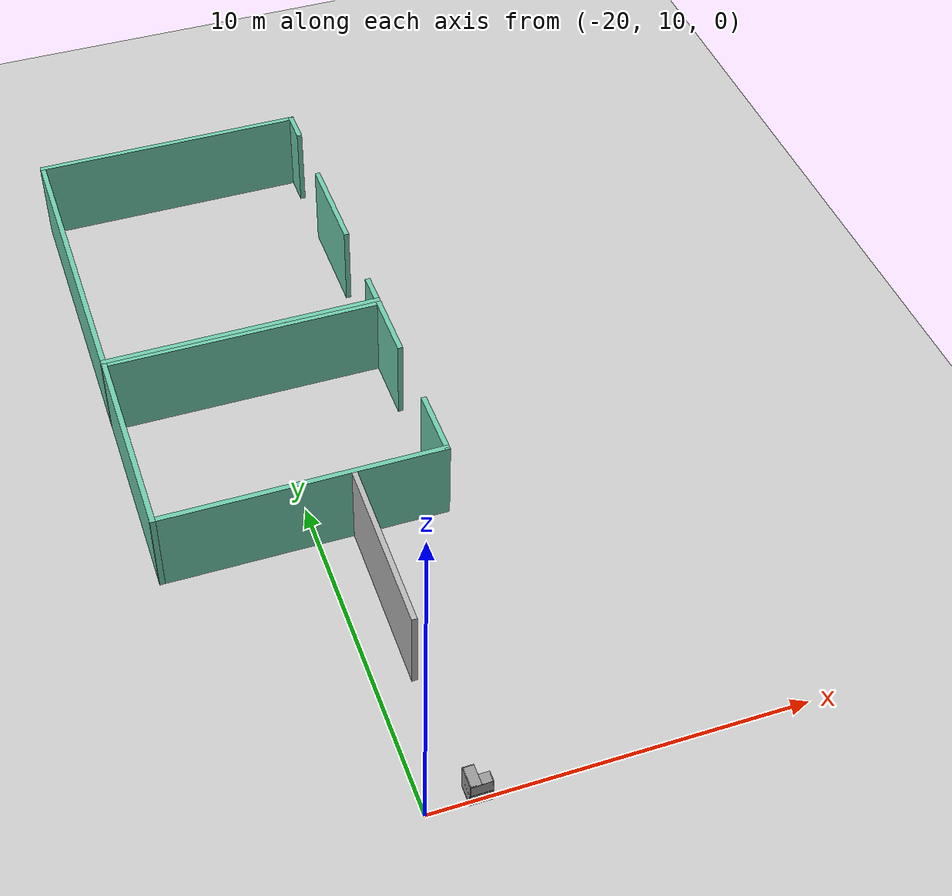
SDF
<sdf version="1.7">
 <world name="hospital_world">
  <model name="ground_plane">
   <static>1</static>
   <link name="link">
    <collision name="collision">
     <geometry><plane><normal>0 0 1</normal><size>100 100</size></plane></geometry>
     <surface>
      <contact><collide_bitmask>65535</collide_bitmask></contact>
      <friction><ode><mu>100</mu><mu2>50</mu2></ode></friction>
     </surface>
    </collision>
    <visual name="visual">
     <cast_shadows>0</cast_shadows>
     <geometry><plane><normal>0 0 1</normal><size>100 100</size></plane></geometry>
     <material>
      <script><uri>file://media/materials/scripts/gazebo.material</uri><name>Gazebo/Grey</name></script>
     </material>
    </visual>
   </link>
  </model>
  <model name="model.sdf_2_clone_clone_0">
   <pose>-20.3146 21.7313 0 0 -0 3.13762</pose>
   <link name="Wall_0">
    <collision name="Wall_0_Collision">
     <geometry><box><size>8 0.15 2.5</size></box></geometry>
     <pose>0 0 1.25 0 -0 0</pose>
    </collision>
    <visual name="Wall_0_Visual">
     <pose>0 0 1.25 0 -0 0</pose>
     <geometry><box><size>8 0.15 2.5</size></box></geometry>
     <material>
      <script><uri>file://media/materials/scripts/gazebo.material</uri><name>Gazebo/Grey</name></script>
      <ambient>0.435294 0.796078 0.67451 1</ambient>
     </material>
     <meta><layer>0</layer></meta>
    </visual>
    <pose>-0 -2.925 0 0 -0 0</pose>
   </link>
   <link name="Wall_2">
    <collision name="Wall_2_Collision">
     <geometry><box><size>6 0.15 2.5</size></box></geometry>
     <pose>0 0 1.25 0 -0 0</pose>
    </collision>
    <visual name="Wall_2_Visual">
     <pose>0 0 1.25 0 -0 0</pose>
     <geometry><box><size>6 0.15 2.5</size></box></geometry>
     <material>
      <script><uri>file://media/materials/scripts/gazebo.material</uri><name>Gazebo/Grey</name></script>
      <ambient>0.435294 0.796078 0.67451 1</ambient>
     </material>
     <meta><layer>0</layer></meta>
    </visual>
    <pose>3.925 0 0 0 -0 1.5708</pose>
   </link>
   <link name="Wall_5">
    <collision name="Wall_5_Collision">
     <geometry><box><size>8 0.15 2.5</size></box></geometry>
     <pose>0 0 1.25 0 -0 0</pose>
    </collision>
    <visual name="Wall_5_Visual">
     <pose>0 0 1.25 0 -0 0</pose>
     <geometry><box><size>8 0.15 2.5</size></box></geometry>
     <material>
      <script><uri>file://media/materials/scripts/gazebo.material</uri><name>Gazebo/Grey</name></script>
      <ambient>0.435294 0.796078 0.67451 1</ambient>
     </material>
     <meta><layer>0</layer></meta>
    </visual>
    <pose>-0 2.925 0 0 -0 3.14159</pose>
   </link>
   <link name="Wall_6">
    <collision name="Wall_6_Collision">
     <geometry><box><size>2 0.15 2.5</size></box></geometry>
     <pose>0 0 1.25 0 -0 0</pose>
    </collision>
    <visual name="Wall_6_Visual">
     <pose>0 0 1.25 0 -0 0</pose>
     <geometry><box><size>2 0.15 2.5</size></box></geometry>
     <material>
      <script><uri>file://media/materials/scripts/gazebo.material</uri><name>Gazebo/Grey</name></script>
      <ambient>0.435294 0.796078 0.67451 1</ambient>
     </material>
     <meta><layer>0</layer></meta>
    </visual>
    <pose>-3.925 2 0 0 -0 -1.5708</pose>
   </link>
   <link name="Wall_8">
    <collision name="Wall_8_Collision">
     <geometry><box><size>2 0.15 2.5</size></box></geometry>
     <pose>0 0 1.25 0 -0 0</pose>
    </collision>
    <visual name="Wall_8_Visual">
     <pose>0 0 1.25 0 -0 0</pose>
     <geometry><box><size>2 0.15 2.5</size></box></geometry>
     <material>
      <script><uri>file://media/materials/scripts/gazebo.material</uri><name>Gazebo/Grey</name></script>
      <ambient>0.435294 0.796078 0.67451 1</ambient>
     </material>
     <meta><layer>0</layer></meta>
    </visual>
    <pose>-3.925 -2 0 0 -0 1.5708</pose>
   </link>
   <static>1</static>
  </model>
  <model name="model.sdf_3_clone">
   <pose>-20.2978 29.2115 0 0 -0 3.1401</pose>
   <link name="Wall_0">
    <collision name="Wall_0_Collision">
     <geometry><box><size>8 0.15 2.5</size></box></geometry>
     <pose>0 0 1.25 0 -0 0</pose>
    </collision>
    <visual name="Wall_0_Visual">
     <pose>0 0 1.25 0 -0 0</pose>
     <geometry><box><size>8 0.15 2.5</size></box></geometry>
     <material>
      <script><uri>file://media/materials/scripts/gazebo.material</uri><name>Gazebo/Grey</name></script>
      <ambient>0.435294 0.796078 0.67451 1</ambient>
     </material>
     <meta><layer>0</layer></meta>
    </visual>
    <pose>0.00165 -4.425 0 0 -0 0</pose>
   </link>
   <link name="Wall_1">
    <collision name="Wall_1_Collision">
     <geometry><box><size>9 0.15 2.5</size></box></geometry>
     <pose>0 0 1.25 0 -0 0</pose>
    </collision>
    <visual name="Wall_1_Visual">
     <pose>0 0 1.25 0 -0 0</pose>
     <geometry><box><size>9 0.15 2.5</size></box></geometry>
     <material>
      <script><uri>file://media/materials/scripts/gazebo.material</uri><name>Gazebo/Grey</name></script>
      <ambient>0.435294 0.796078 0.67451 1</ambient>
     </material>
     <meta><layer>0</layer></meta>
    </visual>
    <pose>3.92665 0 0 0 -0 1.5708</pose>
   </link>
   <link name="Wall_3">
    <collision name="Wall_3_Collision">
     <geometry><box><size>8 0.15 2.5</size></box></geometry>
     <pose>0 0 1.25 0 -0 0</pose>
    </collision>
    <visual name="Wall_3_Visual">
     <pose>0 0 1.25 0 -0 0</pose>
     <geometry><box><size>8 0.15 2.5</size></box></geometry>
     <material>
      <script><uri>file://media/materials/scripts/gazebo.material</uri><name>Gazebo/Grey</name></script>
      <ambient>0.435294 0.796078 0.67451 1</ambient>
     </material>
     <meta><layer>0</layer></meta>
    </visual>
    <pose>0.00165 4.425 0 0 -0 3.14159</pose>
   </link>
   <link name="Wall_4">
    <collision name="Wall_4_Collision">
     <geometry><box><size>1 0.15 2.5</size></box></geometry>
     <pose>0 0 1.25 0 -0 0</pose>
    </collision>
    <visual name="Wall_4_Visual">
     <pose>0 0 1.25 0 -0 0</pose>
     <geometry><box><size>1 0.15 2.5</size></box></geometry>
     <material>
      <script><uri>file://media/materials/scripts/gazebo.material</uri><name>Gazebo/Grey</name></script>
      <ambient>0.435294 0.796078 0.67451 1</ambient>
     </material>
     <meta><layer>0</layer></meta>
    </visual>
    <pose>-3.92335 4 0 0 -0 -1.5708</pose>
   </link>
   <link name="Wall_6">
    <collision name="Wall_6_Collision">
     <geometry><box><size>1 0.15 2.5</size></box></geometry>
     <pose>0 0 1.25 0 -0 0</pose>
    </collision>
    <visual name="Wall_6_Visual">
     <pose>0 0 1.25 0 -0 0</pose>
     <geometry><box><size>1 0.15 2.5</size></box></geometry>
     <material>
      <script><uri>file://media/materials/scripts/gazebo.material</uri><name>Gazebo/Grey</name></script>
      <ambient>0.435294 0.796078 0.67451 1</ambient>
     </material>
     <meta><layer>0</layer></meta>
    </visual>
    <pose>-3.92335 -4 0 0 -0 1.5708</pose>
   </link>
   <link name="Wall_9">
    <collision name="Wall_9_Collision">
     <geometry><box><size>3 0.15 2.5</size></box></geometry>
     <pose>0 0 1.25 0 -0 0</pose>
    </collision>
    <visual name="Wall_9_Visual">
     <pose>0 0 1.25 0 -0 0</pose>
     <geometry><box><size>3 0.15 2.5</size></box></geometry>
     <material>
      <script><uri>file://media/materials/scripts/gazebo.material</uri><name>Gazebo/Grey</name></script>
      <ambient>0.435294 0.796078 0.67451 1</ambient>
     </material>
     <meta><layer>0</layer></meta>
    </visual>
    <pose>-3.92665 -0.04515 0 0 -0 1.5708</pose>
   </link>
   <static>1</static>
  </model>
  <model name="wall_5_clone_0">
   <static>1</static>
   <link name="link">
    <pose>0 0 1.25 0 -0 0</pose>
    <collision name="collision">
     <geometry><box><size>5 0.15 2.5</size></box></geometry>
     <surface>
      <contact>
       <collide_without_contact>1</collide_without_contact>
       <collide_without_contact_bitmask>2</collide_without_contact_bitmask>
      </contact>
     </surface>
    </collision>
    <visual name="visual">
     <cast_shadows>0</cast_shadows>
     <geometry><box><size>5 0.15 2.5</size></box></geometry>
     <material>
      <script>
       <uri>model://cutout_wall/materials/scripts</uri>
       <uri>model://cutout_wall/materials/textures</uri>
       <name>drc_practice/cutout_wall</name>
      </script>
     </material>
    </visual>
    <sensor name="mud_contact" type="contact">
     <always_on>1</always_on>
     <update_rate>1000</update_rate>
     <contact><collision>collision</collision><topic>__default_topic__</topic></contact>
    </sensor>
   </link>
   <plugin name="gazebo_mud" filename="libMudPlugin.so">
    <contact_sensor_name>link/mud_contact</contact_sensor_name>
    <stiffness>0.0</stiffness>
    <damping>40.0</damping>
    <contact_surface_bitmask>2</contact_surface_bitmask>
    <link_name>drill::link</link_name>
   </plugin>
   <pose>-18.9741 16.2419 0 0 -0 1.55886</pose>
  </model>
  <model name="Wall_Cabinet_Coin_24x30W">
   <link name="Wall_10">
    <pose>0.286 -0.148 0.384 0 -0 0</pose>
    <inertial>
     <mass>2.1259</mass>
     <inertia><ixx>0.0158</ixx><iyy>0.1202</iyy><izz>0.1046</izz><ixy>0</ixy><ixz>0</ixz><iyz>0</iyz></inertia>
    </inertial>
    <collision name="Wall_10_Collision"><geometry><box><size>0.02 0.296 0.768</size></box></geometry></collision>
    <visual name="Wall_10_Visual">
     <geometry><box><size>0.02 0.296 0.768</size></box></geometry>
     <material>
      <script><uri>file://media/materials/scripts/gazebo.material</uri><name>Gazebo/Grey</name></script>
      <ambient>1 1 1 1</ambient>
     </material>
    </visual>
   </link>
   <joint name="10_16" type="fixed">
    <pose>0 0 -0.374 0 -0 0</pose>
    <parent>Wall_16</parent>
    <child>Wall_10</child>
    <axis><xyz>1 0 0</xyz><limit><lower>-1e+16</lower><upper>1e+16</upper></limit></axis>
   </joint>
   <joint name="10_14" type="fixed">
    <parent>Wall_14</parent>
    <child>Wall_10</child>
    <axis><xyz>1 0 0</xyz><limit><lower>-1e+16</lower><upper>1e+16</upper></limit></axis>
   </joint>
   <joint name="10_12" type="fixed">
    <pose>0 0 0.374 0 -0 0</pose>
    <parent>Wall_12</parent>
    <child>Wall_10</child>
    <axis><xyz>1 0 0</xyz><limit><lower>-1e+16</lower><upper>1e+16</upper></limit></axis>
   </joint>
   <joint name="10_29" type="fixed">
    <pose>0 -0.148 0 0 -0 0</pose>
    <parent>Wall_29</parent>
    <child>Wall_10</child>
    <axis><xyz>1 0 0</xyz><limit><lower>-1e+16</lower><upper>1e+16</upper></limit></axis>
   </joint>
   <link name="Wall_12">
    <pose>0.148 -0.148 0.758 0 -0 0</pose>
    <inertial>
     <mass>0.8802</mass>
     <inertia><ixx>0.0065</ixx><iyy>0.0139</iyy><izz>0.0074</izz><ixy>0</ixy><ixz>0</ixz><iyz>0</iyz></inertia>
    </inertial>
    <collision name="Wall_12_Collision"><geometry><box><size>0.296 0.296 0.02</size></box></geometry></collision>
    <visual name="Wall_12_Visual">
     <geometry><box><size>0.296 0.296 0.02</size></box></geometry>
     <material>
      <script><uri>file://media/materials/scripts/gazebo.material</uri><name>Gazebo/Grey</name></script>
      <ambient>1 1 1 1</ambient>
     </material>
    </visual>
   </link>
   <joint name="12_29" type="fixed">
    <pose>0 -0.148 0 0 -0 0</pose>
    <parent>Wall_29</parent>
    <child>Wall_12</child>
    <axis><xyz>0 0 1</xyz><limit><lower>-1e+16</lower><upper>1e+16</upper></limit></axis>
   </joint>
   <link name="Wall_14">
    <pose>0.148 -0.148 0.384 0 -0 0</pose>
    <inertial>
     <mass>0.8802</mass>
     <inertia><ixx>0.0065</ixx><iyy>0.0139</iyy><izz>0.0074</izz><ixy>0</ixy><ixz>0</ixz><iyz>0</iyz></inertia>
    </inertial>
    <collision name="Wall_14_Collision"><geometry><box><size>0.296 0.296 0.02</size></box></geometry></collision>
    <visual name="Wall_14_Visual">
     <geometry><box><size>0.296 0.296 0.02</size></box></geometry>
     <material>
      <script><uri>file://media/materials/scripts/gazebo.material</uri><name>Gazebo/Grey</name></script>
      <ambient>1 1 1 1</ambient>
     </material>
    </visual>
   </link>
   <joint name="14_29" type="fixed">
    <pose>0 -0.148 0 0 -0 0</pose>
    <parent>Wall_29</parent>
    <child>Wall_14</child>
    <axis><xyz>0 1 0</xyz><limit><lower>-1e+16</lower><upper>1e+16</upper></limit></axis>
   </joint>
   <link name="Wall_16">
    <pose>0.148 -0.148 0.01 0 -0 0</pose>
    <inertial>
     <mass>0.8802</mass>
     <inertia><ixx>0.0065</ixx><iyy>0.0139</iyy><izz>0.0074</izz><ixy>0</ixy><ixz>0</ixz><iyz>0</iyz></inertia>
    </inertial>
    <collision name="Wall_16_Collision"><geometry><box><size>0.296 0.296 0.02</size></box></geometry></collision>
    <visual name="Wall_16_Visual">
     <geometry><box><size>0.296 0.296 0.02</size></box></geometry>
     <material>
      <script><uri>file://media/materials/scripts/gazebo.material</uri><name>Gazebo/Grey</name></script>
      <ambient>1 1 1 1</ambient>
     </material>
    </visual>
   </link>
   <joint name="16_29" type="fixed">
    <pose>0 -0.148 0 0 -0 0</pose>
    <parent>Wall_29</parent>
    <child>Wall_16</child>
    <axis><xyz>0 1 0</xyz><limit><lower>-1e+16</lower><upper>1e+16</upper></limit></axis>
   </joint>
   <link name="Wall_18">
    <pose>-0.148 0 0.01 0 -0 0</pose>
    <inertial>
     <mass>1.6525</mass>
     <inertia><ixx>0.0491</ixx><iyy>0.0613</iyy><izz>0.0123</izz><ixy>0</ixy><ixz>0</ixz><iyz>0</iyz></inertia>
    </inertial>
    <collision name="Wall_18_Collision"><geometry><box><size>0.296 0.592 0.02</size></box></geometry></collision>
    <visual name="Wall_18_Visual">
     <geometry><box><size>0.296 0.592 0.02</size></box></geometry>
     <material>
      <script><uri>file://media/materials/scripts/gazebo.material</uri><name>Gazebo/Grey</name></script>
      <ambient>1 1 1 1</ambient>
     </material>
    </visual>
   </link>
   <joint name="18_16" type="fixed">
    <pose>0.148 -0.148 0 0 -0 0</pose>
    <parent>Wall_16</parent>
    <child>Wall_18</child>
    <axis><xyz>1 0 0</xyz><limit><lower>-1e+16</lower><upper>1e+16</upper></limit></axis>
   </joint>
   <joint name="18_29" type="fixed">
    <pose>0 -0.296 0 0 -0 0</pose>
    <parent>Wall_29</parent>
    <child>Wall_18</child>
    <axis><xyz>0 1 0</xyz><limit><lower>-1e+16</lower><upper>1e+16</upper></limit></axis>
   </joint>
   <joint name="18_27" type="fixed">
    <pose>-0.148 0 0 0 -0 0</pose>
    <parent>Wall_27</parent>
    <child>Wall_18</child>
    <axis><xyz>1 0 0</xyz><limit><lower>-1e+16</lower><upper>1e+16</upper></limit></axis>
   </joint>
   <joint name="18_30" type="fixed">
    <pose>0 0.296 0 0 -0 0</pose>
    <parent>Wall_30</parent>
    <child>Wall_18</child>
    <axis><xyz>0 1 0</xyz><limit><lower>-1e+16</lower><upper>1e+16</upper></limit></axis>
   </joint>
   <link name="Wall_20">
    <pose>-0.148 0 0.384 0 -0 0</pose>
    <inertial>
     <mass>1.6525</mass>
     <inertia><ixx>0.0491</ixx><iyy>0.0613</iyy><izz>0.0123</izz><ixy>0</ixy><ixz>0</ixz><iyz>0</iyz></inertia>
    </inertial>
    <collision name="Wall_20_Collision"><geometry><box><size>0.296 0.592 0.02</size></box></geometry></collision>
    <visual name="Wall_20_Visual">
     <geometry><box><size>0.296 0.592 0.02</size></box></geometry>
     <material>
      <script><uri>file://media/materials/scripts/gazebo.material</uri><name>Gazebo/Grey</name></script>
      <ambient>1 1 1 1</ambient>
     </material>
    </visual>
   </link>
   <joint name="20_14" type="fixed">
    <pose>0.148 -0.148 0 0 -0 0</pose>
    <parent>Wall_14</parent>
    <child>Wall_20</child>
    <axis><xyz>1 0 0</xyz><limit><lower>-1e+16</lower><upper>1e+16</upper></limit></axis>
   </joint>
   <joint name="20_29" type="fixed">
    <pose>0 -0.296 0 0 -0 0</pose>
    <parent>Wall_29</parent>
    <child>Wall_20</child>
    <axis><xyz>0 1 0</xyz><limit><lower>-1e+16</lower><upper>1e+16</upper></limit></axis>
   </joint>
   <joint name="20_27" type="fixed">
    <pose>-0.148 0 0 0 -0 0</pose>
    <parent>Wall_27</parent>
    <child>Wall_20</child>
    <axis><xyz>1 0 0</xyz><limit><lower>-1e+16</lower><upper>1e+16</upper></limit></axis>
   </joint>
   <joint name="20_30" type="fixed">
    <pose>0 0.296 0 0 -0 0</pose>
    <parent>Wall_30</parent>
    <child>Wall_20</child>
    <axis><xyz>0 1 0</xyz><limit><lower>-1e+16</lower><upper>1e+16</upper></limit></axis>
   </joint>
   <link name="Wall_22">
    <pose>-0.148 0 0.758 0 -0 0</pose>
    <inertial>
     <mass>1.6525</mass>
     <inertia><ixx>0.0491</ixx><iyy>0.0613</iyy><izz>0.0123</izz><ixy>0</ixy><ixz>0</ixz><iyz>0</iyz></inertia>
    </inertial>
    <collision name="Wall_22_Collision"><geometry><box><size>0.296 0.592 0.02</size></box></geometry></collision>
    <visual name="Wall_22_Visual">
     <geometry><box><size>0.296 0.592 0.02</size></box></geometry>
     <material>
      <script><uri>file://media/materials/scripts/gazebo.material</uri><name>Gazebo/Grey</name></script>
      <ambient>1 1 1 1</ambient>
     </material>
    </visual>
   </link>
   <joint name="22_12" type="fixed">
    <pose>0.148 -0.148 0 0 -0 0</pose>
    <parent>Wall_12</parent>
    <child>Wall_22</child>
    <axis><xyz>1 0 0</xyz><limit><lower>-1e+16</lower><upper>1e+16</upper></limit></axis>
   </joint>
   <joint name="22_29" type="fixed">
    <pose>0 -0.296 0 0 -0 0</pose>
    <parent>Wall_29</parent>
    <child>Wall_22</child>
    <axis><xyz>0 1 0</xyz><limit><lower>-1e+16</lower><upper>1e+16</upper></limit></axis>
   </joint>
   <joint name="22_27" type="fixed">
    <pose>-0.148 0 0 0 -0 0</pose>
    <parent>Wall_27</parent>
    <child>Wall_22</child>
    <axis><xyz>1 0 0</xyz><limit><lower>-1e+16</lower><upper>1e+16</upper></limit></axis>
   </joint>
   <joint name="22_30" type="fixed">
    <pose>0 0.296 0 0 -0 0</pose>
    <parent>Wall_30</parent>
    <child>Wall_22</child>
    <axis><xyz>0 1 0</xyz><limit><lower>-1e+16</lower><upper>1e+16</upper></limit></axis>
   </joint>
   <link name="Wall_27">
    <pose>-0.286 0 0.384 0 -0 0</pose>
    <inertial>
     <mass>4.2589</mass>
     <inertia><ixx>0.1266</ixx><iyy>0.3358</iyy><izz>0.2095</izz><ixy>0</ixy><ixz>0</ixz><iyz>0</iyz></inertia>
    </inertial>
    <collision name="Wall_27_Collision"><geometry><box><size>0.02 0.592 0.768</size></box></geometry></collision>
    <visual name="Wall_27_Visual">
     <geometry><box><size>0.02 0.592 0.768</size></box></geometry>
     <material>
      <script><uri>file://media/materials/scripts/gazebo.material</uri><name>Gazebo/Grey</name></script>
      <ambient>1 1 1 1</ambient>
     </material>
    </visual>
   </link>
   <joint name="27_30" type="fixed">
    <pose>0 0.296 0 0 -0 0</pose>
    <parent>Wall_30</parent>
    <child>Wall_27</child>
    <axis><xyz>0 1 0</xyz><limit><lower>-1e+16</lower><upper>1e+16</upper></limit></axis>
   </joint>
   <link name="Wall_29">
    <pose>0 -0.286 0.384 0 -0 0</pose>
    <inertial>
     <mass>4.3176</mass>
     <inertia><ixx>0.134</ixx><iyy>0.2091</iyy><izz>0.3428</izz><ixy>0</ixy><ixz>0</ixz><iyz>0</iyz></inertia>
    </inertial>
    <collision name="Wall_29_Collision"><geometry><box><size>0.592 0.02 0.768</size></box></geometry></collision>
    <visual name="Wall_29_Visual">
     <geometry><box><size>0.592 0.02 0.768</size></box></geometry>
     <material>
      <script><uri>file://media/materials/scripts/gazebo.material</uri><name>Gazebo/Grey</name></script>
      <ambient>1 1 1 1</ambient>
     </material>
    </visual>
   </link>
   <link name="Wall_30">
    <pose>-0.148 0.286 0.384 0 -0 0</pose>
    <inertial>
     <mass>2.1093</mass>
     <inertia><ixx>0.1021</ixx><iyy>0.0157</iyy><izz>0.1177</izz><ixy>0</ixy><ixz>0</ixz><iyz>0</iyz></inertia>
    </inertial>
    <collision name="Wall_30_Collision"><geometry><box><size>0.296 0.02 0.768</size></box></geometry></collision>
    <visual name="Wall_30_Visual">
     <geometry><box><size>0.296 0.02 0.768</size></box></geometry>
     <material>
      <script><uri>file://media/materials/scripts/gazebo.material</uri><name>Gazebo/Grey</name></script>
      <ambient>1 1 1 1</ambient>
     </material>
    </visual>
   </link>
   <static>1</static>
   <pose>-18.6272 10.2158 0 0 -0 0</pose>
  </model>
 </world>
</sdf>
